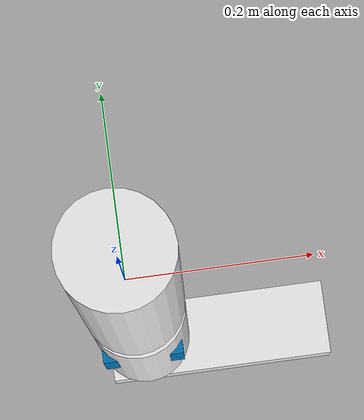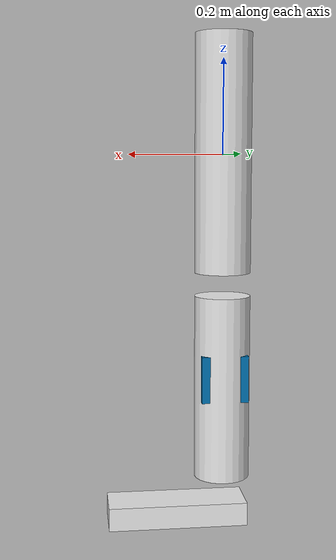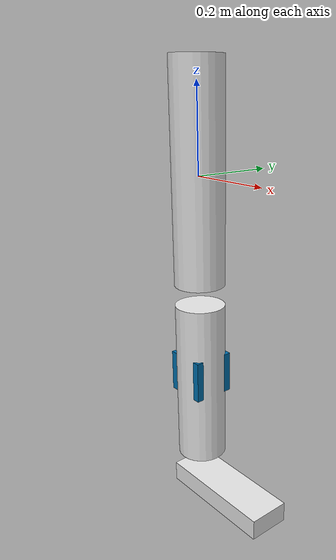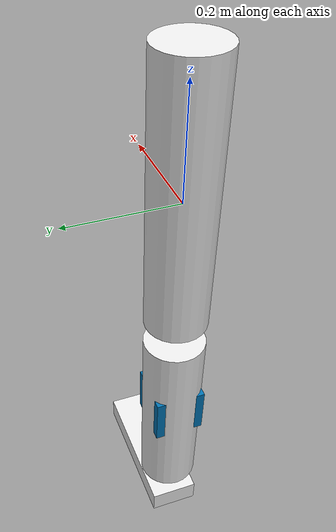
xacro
<?xml version="1.0"?>
<robot xmlns:xacro="http://www.ros.org/wiki/xacro" name="jetleg">
    <xacro:arg name="initial_positions_file" default="initial_positions.yaml" />

    <!-- Import jetleg urdf file -->
    <xacro:include filename="$(find jetleg_description)/urdf/jetleg.xacro" />

    <!-- Import control_xacro -->
    <xacro:include filename="jetleg.ros2_control.xacro" />

    <xacro:jetleg_ros2_control name="GazeboSystem" initial_positions_file="$(arg initial_positions_file)"/>

    <gazebo>
        <plugin filename="libgazebo_ros2_control.so" name="gazebo_ros2_control">
            <parameters>$(find jetleg_moveit_config)/config/ros2_controllers.yaml</parameters>

            <robot_param>robot_description</robot_param>
            <robot_param_node>robot_state_publisher</robot_param_node>
        </plugin>
    </gazebo>

</robot>

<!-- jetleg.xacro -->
<robot xmlns:xacro="http://www.ros.org/wiki/xacro" name="jetleg">

    <link name="base_link">
    </link>

    <!-- Include the JetLeg -->
    <xacro:include filename="$(find jetleg_description)/urdf/components/jetleg.macro.xacro"/>

    <!-- Create a JetLeg -->
    <xacro:jetleg id="">
    </xacro:jetleg>

    <!-- Include components -->
    <xacro:include filename="$(find jetleg_description)/urdf/components/imu.xacro" />
    <xacro:jetleg_imu />

    <joint name="base_link_to_jetleg" type="fixed">
        <parent link="base_link" />
        <child link="thigh_" />
    </joint>
</robot>

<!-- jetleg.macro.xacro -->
<robot xmlns:xacro="http://www.ros.org/wiki/xacro" name="jetleg_macro">

    <xacro:property name="thigh_length" value="0.5" />
    <xacro:property name="shank_length" value="0.4" />
    <xacro:property name="knee_joint_radius" value="0.025" />
    <xacro:property name="ankle_joint_radius" value="0.025" />
    <xacro:property name="foot_length" value="0.3" />
    <xacro:property name="foot_width" value="0.1" />
    <xacro:property name="foot_height" value="0.05" />

    <xacro:property name="thigh_mass" value="1" />
    <xacro:property name="shank_mass" value="1" />
    <xacro:property name="foot_mass" value="1.5" />

    <xacro:macro name="jetleg" params="id">
        <link name="thigh_${id}">
            <visual>
                <geometry>
                    <cylinder length="${thigh_length}" radius="0.06"/>
                </geometry>
                <material name="white"/>
            </visual>
            <collision>
                <geometry>
                    <cylinder length="${thigh_length}" radius="0.06"/>
                </geometry>
            </collision>
            <inertial>
            <mass value="${thigh_mass}"/>
            <inertia ixx="1" ixy="0" ixz="0" iyy="1" iyz="0" izz="1"/>
        </inertial>
        </link>

        <link name="shank_${id}">
            <visual>
                <geometry>
                    <cylinder length="${shank_length}" radius="0.06"/>
                </geometry>
                <material name="white"/>
                <origin rpy="0 0 0" xyz="0 0 ${-shank_length/2-knee_joint_radius}"/>
            </visual>
            <collision>
                <geometry>
                    <cylinder length="${shank_length}" radius="0.06"/>
                </geometry>
                <origin rpy="0 0 0" xyz="0 0 ${-shank_length/2-knee_joint_radius}"/>
            </collision>
            <inertial>
                <mass value="${shank_mass}"/>
                <inertia ixx="1" ixy="0" ixz="0" iyy="1" iyz="0" izz="1"/>
                <origin rpy="0 0 0" xyz="0 0 ${-shank_length/2-knee_joint_radius}"/>
            </inertial>
        </link>

        <joint name="knee_joint_${id}" type="revolute">
            <origin rpy="0 0 0" xyz="0 0 ${-thigh_length/2-knee_joint_radius}"/>
            <parent link="thigh_${id}"/>
            <child link="shank_${id}"/>
            <axis xyz="0 1 0"/>
            <limit effort="100" lower="0.0" upper="2.5" velocity="10"/>
        </joint>

        <link name="foot_${id}">
            <contact>
                <lateral_friction value="100"/>
            </contact>

            <visual>
                <geometry>
                    <box size="${foot_length} ${foot_width} ${foot_height}"/>
                </geometry>
                <material name="white"/>
                <origin xyz="${(foot_length/2-0.05)} 0 ${-ankle_joint_radius-foot_height/2}"/>
            </visual>
            <collision>
                <geometry>
                    <box size="${foot_length} ${foot_width} ${foot_height}"/>
                </geometry>
                <origin xyz="${(foot_length/2-0.05)} 0 ${-ankle_joint_radius-foot_height/2}"/>
            </collision>
            <inertial>
                <mass value="${foot_mass}"/>
                <inertia ixx="1" ixy="0" ixz="0" iyy="1" iyz="0" izz="1"/>
                <origin xyz="${(foot_length/2-0.05)} 0 ${-ankle_joint_radius-foot_height/2}"/>
            </inertial>
        </link>

        <joint name="ankle_joint_${id}" type="revolute">
            <origin rpy="0 0 0" xyz="0 0 ${-(knee_joint_radius + shank_length + ankle_joint_radius)}"/>
            <parent link="shank_${id}"/>
            <child link="foot_${id}"/>
            <axis xyz="0 1 0"/>
            <limit effort="100" lower="-0.1" upper="0.5" velocity="10"/>
        </joint>

    </xacro:macro>
</robot>

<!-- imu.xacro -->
<robot xmlns:xacro="http://www.ros.org/wiki/xacro" name="imu0">

    <xacro:macro name="jetleg_imu" >
        <link name="shank_imu">
            <visual>
                <geometry>
                    <box size="0.1 0.1 0.1"/>
                </geometry>
            </visual>
            <inertial>
                <mass value="0.1"/>
                <inertia ixx="0.1" ixy="0" ixz="0" iyy="0.1" iyz="0" izz="0.1"/>
            </inertial>
        </link>
        <joint name="imu_to_shank" type="fixed">
            <origin rpy="0 0 0" xyz="0 0 -0.2" />
            <parent link="shank_" />
            <child link="shank_imu" />
        </joint>

        <gazebo reference="shank_imu">
            <gravity>true</gravity>
            <sensor name="imu_sensor" type="imu">
            <always_on>true</always_on>
            <update_rate>100</update_rate>
            <visualize>true</visualize>
            <topic>imu_topic</topic>
            <plugin filename="libgazebo_ros_imu_sensor.so" name="imu_plugin">
                <topicName>imu</topicName>
                <bodyName>shank_imu</bodyName>
                <updateRateHZ>10.0</updateRateHZ>
                <gaussianNoise>0.0</gaussianNoise>
                <xyzOffset>0 0 0</xyzOffset>
                <rpyOffset>0 0 0</rpyOffset>
                <frameName>shank_imu</frameName>
                <initialOrientationAsReference>false</initialOrientationAsReference>
            </plugin>
            <pose>0 0 0 0 0 0</pose>
            </sensor>
        </gazebo>
    </xacro:macro>

</robot>
